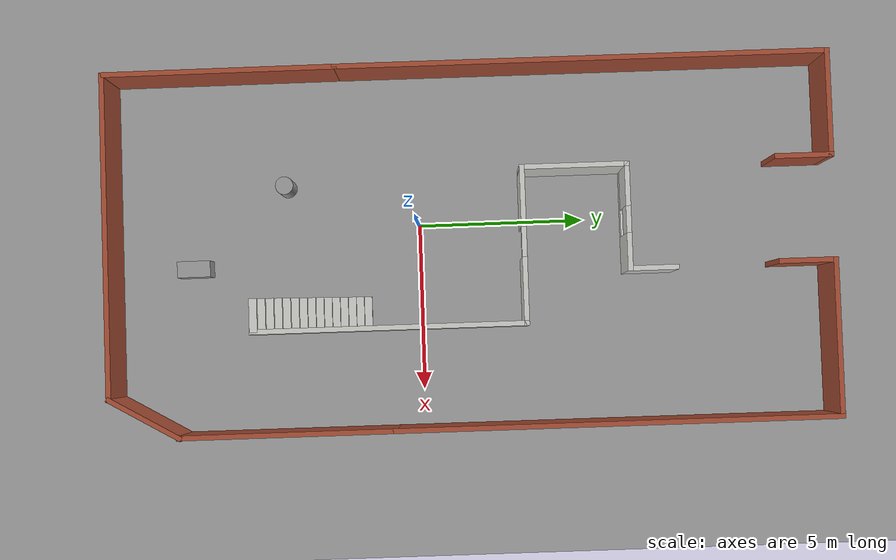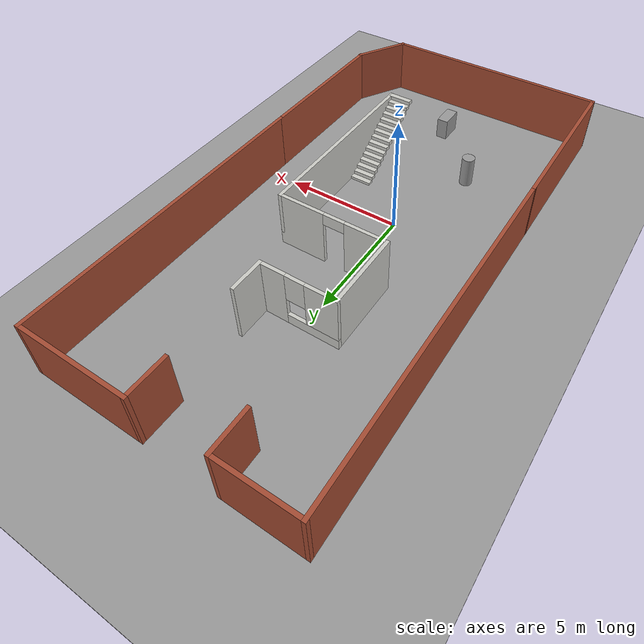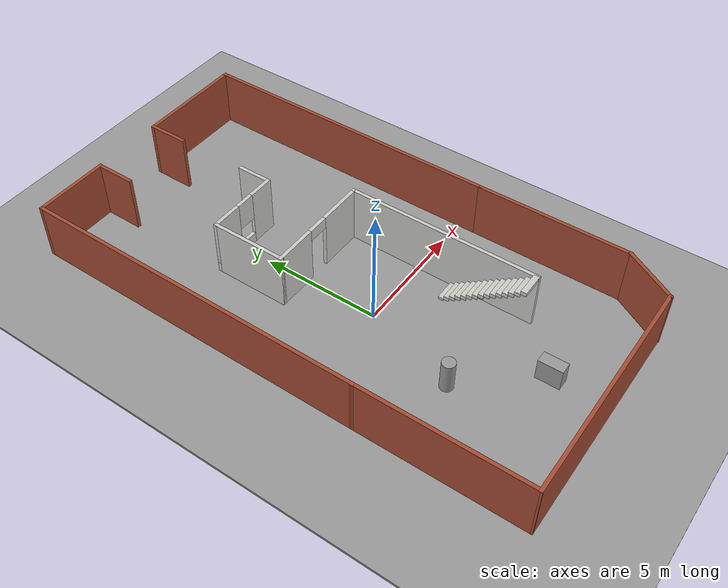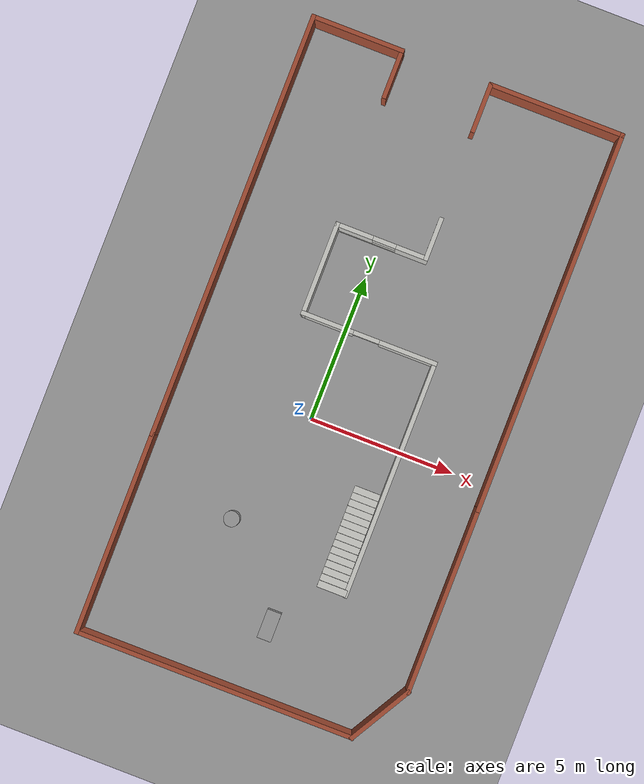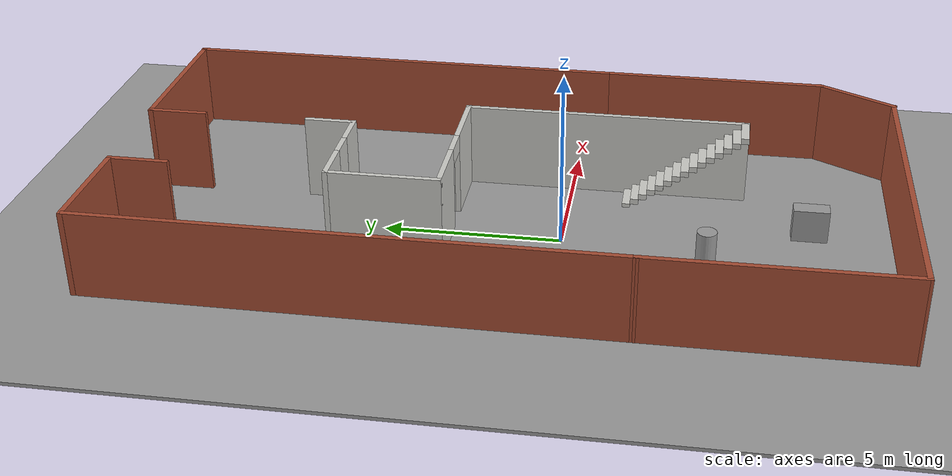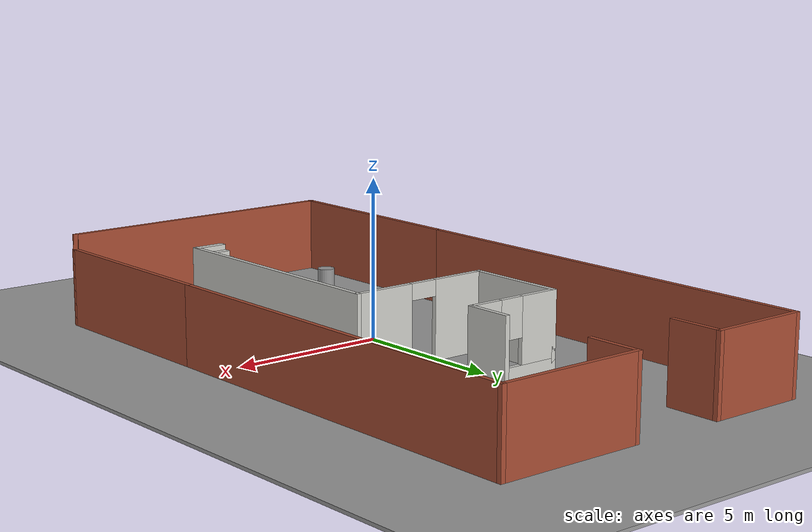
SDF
<sdf version="1.7">
 <world name="default">
  <model name="ground_plane">
   <static>1</static>
   <link name="link">
    <collision name="collision">
     <geometry><plane><normal>0 0 1</normal><size>100 100</size></plane></geometry>
     <surface><friction><ode><mu>100</mu><mu2>50</mu2></ode></friction></surface>
    </collision>
    <visual name="visual">
     <cast_shadows>0</cast_shadows>
     <geometry><plane><normal>0 0 1</normal><size>100 100</size></plane></geometry>
     <material>
      <script><uri>file://media/materials/scripts/gazebo.material</uri><name>Gazebo/Grey</name></script>
     </material>
    </visual>
   </link>
  </model>
  <light name="sun" type="directional">
   <pose>0 0 10 0 -0 0</pose>
   <diffuse>0.8 0.8 0.8 1</diffuse>
   <specular>0.2 0.2 0.2 1</specular>
   <attenuation>
    <range>1000</range>
    <constant>0.9</constant>
    <linear>0.01</linear>
    <quadratic>0.001</quadratic>
   </attenuation>
   <direction>-0.5 0.1 -0.9</direction>
   <spot><inner_angle>0</inner_angle><outer_angle>0</outer_angle><falloff>0</falloff></spot>
  </light>
  <scene><shadows>0</shadows><ambient>0.4 0.4 0.4 1</ambient><background>0.7 0.7 0.7 1</background></scene>
  <physics type="ode">
   <real_time_update_rate>1000</real_time_update_rate>
   <max_step_size>0.001</max_step_size>
   <real_time_factor>1</real_time_factor>
   <ode>
    <solver>
     <type>quick</type>
     <iters>150</iters>
     <precon_iters>0</precon_iters>
     <sor>1.4</sor>
     <use_dynamic_moi_rescaling>1</use_dynamic_moi_rescaling>
    </solver>
    <constraints>
     <cfm>1e-05</cfm>
     <erp>0.2</erp>
     <contact_max_correcting_vel>2000</contact_max_correcting_vel>
     <contact_surface_layer>0.01</contact_surface_layer>
    </constraints>
   </ode>
  </physics>
  <gravity>0 0 -9.8</gravity>
  <magnetic_field>6e-06 2.3e-05 -4.2e-05</magnetic_field>
  <atmosphere type="adiabatic"/>
  <spherical_coordinates>
   <surface_model>EARTH_WGS84</surface_model>
   <latitude_deg>0</latitude_deg>
   <longitude_deg>0</longitude_deg>
   <elevation>0</elevation>
   <heading_deg>0</heading_deg>
  </spherical_coordinates>
  <model name="construction_area">
   <pose>0.77093 1.52164 0 0 -0 0</pose>
   <link name="Stairs_1">
    <visual name="Stairs_1_Visual_0">
     <pose>1.86697 -3.1665 0.083333 0 -0 0</pose>
     <geometry><box><size>1 0.233333 0.166667</size></box></geometry>
     <material>
      <script><uri>file://media/materials/scripts/gazebo.material</uri><name>Gazebo/CeilingTiled</name></script>
      <ambient>0.760784 0.662745 0.627451 1</ambient>
     </material>
     <meta><layer>0</layer></meta>
    </visual>
    <collision name="Stairs_1_Collision_0">
     <geometry><box><size>1 0.233333 0.166667</size></box></geometry>
     <pose>1.86697 -3.1665 0.083333 0 -0 0</pose>
    </collision>
    <visual name="Stairs_1_Visual_1">
     <pose>1.86697 -3.39983 0.25 0 -0 0</pose>
     <geometry><box><size>1 0.233333 0.166667</size></box></geometry>
     <material>
      <script><uri>file://media/materials/scripts/gazebo.material</uri><name>Gazebo/CeilingTiled</name></script>
      <ambient>0.760784 0.662745 0.627451 1</ambient>
     </material>
     <meta><layer>0</layer></meta>
    </visual>
    <collision name="Stairs_1_Collision_1">
     <geometry><box><size>1 0.233333 0.166667</size></box></geometry>
     <pose>1.86697 -3.39983 0.25 0 -0 0</pose>
    </collision>
    <visual name="Stairs_1_Visual_2">
     <pose>1.86697 -3.63317 0.416667 0 -0 0</pose>
     <geometry><box><size>1 0.233333 0.166667</size></box></geometry>
     <material>
      <script><uri>file://media/materials/scripts/gazebo.material</uri><name>Gazebo/CeilingTiled</name></script>
      <ambient>0.760784 0.662745 0.627451 1</ambient>
     </material>
     <meta><layer>0</layer></meta>
    </visual>
    <collision name="Stairs_1_Collision_2">
     <geometry><box><size>1 0.233333 0.166667</size></box></geometry>
     <pose>1.86697 -3.63317 0.416667 0 -0 0</pose>
    </collision>
    <visual name="Stairs_1_Visual_3">
     <pose>1.86697 -3.8665 0.583333 0 -0 0</pose>
     <geometry><box><size>1 0.233333 0.166667</size></box></geometry>
     <material>
      <script><uri>file://media/materials/scripts/gazebo.material</uri><name>Gazebo/CeilingTiled</name></script>
      <ambient>0.760784 0.662745 0.627451 1</ambient>
     </material>
     <meta><layer>0</layer></meta>
    </visual>
    <collision name="Stairs_1_Collision_3">
     <geometry><box><size>1 0.233333 0.166667</size></box></geometry>
     <pose>1.86697 -3.8665 0.583333 0 -0 0</pose>
    </collision>
    <visual name="Stairs_1_Visual_4">
     <pose>1.86697 -4.09983 0.75 0 -0 0</pose>
     <geometry><box><size>1 0.233333 0.166667</size></box></geometry>
     <material>
      <script><uri>file://media/materials/scripts/gazebo.material</uri><name>Gazebo/CeilingTiled</name></script>
      <ambient>0.760784 0.662745 0.627451 1</ambient>
     </material>
     <meta><layer>0</layer></meta>
    </visual>
    <collision name="Stairs_1_Collision_4">
     <geometry><box><size>1 0.233333 0.166667</size></box></geometry>
     <pose>1.86697 -4.09983 0.75 0 -0 0</pose>
    </collision>
    <visual name="Stairs_1_Visual_5">
     <pose>1.86697 -4.33317 0.916667 0 -0 0</pose>
     <geometry><box><size>1 0.233333 0.166667</size></box></geometry>
     <material>
      <script><uri>file://media/materials/scripts/gazebo.material</uri><name>Gazebo/CeilingTiled</name></script>
      <ambient>0.760784 0.662745 0.627451 1</ambient>
     </material>
     <meta><layer>0</layer></meta>
    </visual>
    <collision name="Stairs_1_Collision_5">
     <geometry><box><size>1 0.233333 0.166667</size></box></geometry>
     <pose>1.86697 -4.33317 0.916667 0 -0 0</pose>
    </collision>
    <visual name="Stairs_1_Visual_6">
     <pose>1.86697 -4.5665 1.08333 0 -0 0</pose>
     <geometry><box><size>1 0.233333 0.166667</size></box></geometry>
     <material>
      <script><uri>file://media/materials/scripts/gazebo.material</uri><name>Gazebo/CeilingTiled</name></script>
      <ambient>0.760784 0.662745 0.627451 1</ambient>
     </material>
     <meta><layer>0</layer></meta>
    </visual>
    <collision name="Stairs_1_Collision_6">
     <geometry><box><size>1 0.233333 0.166667</size></box></geometry>
     <pose>1.86697 -4.5665 1.08333 0 -0 0</pose>
    </collision>
    <visual name="Stairs_1_Visual_7">
     <pose>1.86697 -4.79983 1.25 0 -0 0</pose>
     <geometry><box><size>1 0.233333 0.166667</size></box></geometry>
     <material>
      <script><uri>file://media/materials/scripts/gazebo.material</uri><name>Gazebo/CeilingTiled</name></script>
      <ambient>0.760784 0.662745 0.627451 1</ambient>
     </material>
     <meta><layer>0</layer></meta>
    </visual>
    <collision name="Stairs_1_Collision_7">
     <geometry><box><size>1 0.233333 0.166667</size></box></geometry>
     <pose>1.86697 -4.79983 1.25 0 -0 0</pose>
    </collision>
    <visual name="Stairs_1_Visual_8">
     <pose>1.86697 -5.03317 1.41667 0 -0 0</pose>
     <geometry><box><size>1 0.233333 0.166667</size></box></geometry>
     <material>
      <script><uri>file://media/materials/scripts/gazebo.material</uri><name>Gazebo/CeilingTiled</name></script>
      <ambient>0.760784 0.662745 0.627451 1</ambient>
     </material>
     <meta><layer>0</layer></meta>
    </visual>
    <collision name="Stairs_1_Collision_8">
     <geometry><box><size>1 0.233333 0.166667</size></box></geometry>
     <pose>1.86697 -5.03317 1.41667 0 -0 0</pose>
    </collision>
    <visual name="Stairs_1_Visual_9">
     <pose>1.86697 -5.2665 1.58333 0 -0 0</pose>
     <geometry><box><size>1 0.233333 0.166667</size></box></geometry>
     <material>
      <script><uri>file://media/materials/scripts/gazebo.material</uri><name>Gazebo/CeilingTiled</name></script>
      <ambient>0.760784 0.662745 0.627451 1</ambient>
     </material>
     <meta><layer>0</layer></meta>
    </visual>
    <collision name="Stairs_1_Collision_9">
     <geometry><box><size>1 0.233333 0.166667</size></box></geometry>
     <pose>1.86697 -5.2665 1.58333 0 -0 0</pose>
    </collision>
    <visual name="Stairs_1_Visual_10">
     <pose>1.86697 -5.49984 1.75 0 -0 0</pose>
     <geometry><box><size>1 0.233333 0.166667</size></box></geometry>
     <material>
      <script><uri>file://media/materials/scripts/gazebo.material</uri><name>Gazebo/CeilingTiled</name></script>
      <ambient>0.760784 0.662745 0.627451 1</ambient>
     </material>
     <meta><layer>0</layer></meta>
    </visual>
    <collision name="Stairs_1_Collision_10">
     <geometry><box><size>1 0.233333 0.166667</size></box></geometry>
     <pose>1.86697 -5.49984 1.75 0 -0 0</pose>
    </collision>
    <visual name="Stairs_1_Visual_11">
     <pose>1.86697 -5.73317 1.91667 0 -0 0</pose>
     <geometry><box><size>1 0.233333 0.166667</size></box></geometry>
     <material>
      <script><uri>file://media/materials/scripts/gazebo.material</uri><name>Gazebo/CeilingTiled</name></script>
      <ambient>0.760784 0.662745 0.627451 1</ambient>
     </material>
     <meta><layer>0</layer></meta>
    </visual>
    <collision name="Stairs_1_Collision_11">
     <geometry><box><size>1 0.233333 0.166667</size></box></geometry>
     <pose>1.86697 -5.73317 1.91667 0 -0 0</pose>
    </collision>
    <visual name="Stairs_1_Visual_12">
     <pose>1.86697 -5.9665 2.08333 0 -0 0</pose>
     <geometry><box><size>1 0.233333 0.166667</size></box></geometry>
     <material>
      <script><uri>file://media/materials/scripts/gazebo.material</uri><name>Gazebo/CeilingTiled</name></script>
      <ambient>0.760784 0.662745 0.627451 1</ambient>
     </material>
     <meta><layer>0</layer></meta>
    </visual>
    <collision name="Stairs_1_Collision_12">
     <geometry><box><size>1 0.233333 0.166667</size></box></geometry>
     <pose>1.86697 -5.9665 2.08333 0 -0 0</pose>
    </collision>
    <visual name="Stairs_1_Visual_13">
     <pose>1.86697 -6.19984 2.25 0 -0 0</pose>
     <geometry><box><size>1 0.233333 0.166667</size></box></geometry>
     <material>
      <script><uri>file://media/materials/scripts/gazebo.material</uri><name>Gazebo/CeilingTiled</name></script>
      <ambient>0.760784 0.662745 0.627451 1</ambient>
     </material>
     <meta><layer>0</layer></meta>
    </visual>
    <collision name="Stairs_1_Collision_13">
     <geometry><box><size>1 0.233333 0.166667</size></box></geometry>
     <pose>1.86697 -6.19984 2.25 0 -0 0</pose>
    </collision>
    <visual name="Stairs_1_Visual_14">
     <pose>1.86697 -6.43317 2.41667 0 -0 0</pose>
     <geometry><box><size>1 0.233333 0.166667</size></box></geometry>
     <material>
      <script><uri>file://media/materials/scripts/gazebo.material</uri><name>Gazebo/CeilingTiled</name></script>
      <ambient>0.760784 0.662745 0.627451 1</ambient>
     </material>
     <meta><layer>0</layer></meta>
    </visual>
    <collision name="Stairs_1_Collision_14">
     <geometry><box><size>1 0.233333 0.166667</size></box></geometry>
     <pose>1.86697 -6.43317 2.41667 0 -0 0</pose>
    </collision>
   </link>
   <link name="Wall_1">
    <collision name="Wall_1_Collision">
     <geometry><box><size>9.75 0.15 2.5</size></box></geometry>
     <pose>0 0 1.25 0 -0 0</pose>
    </collision>
    <visual name="Wall_1_Visual">
     <pose>0 0 1.25 0 -0 0</pose>
     <geometry><box><size>9.75 0.15 2.5</size></box></geometry>
     <material>
      <script><uri>file://media/materials/scripts/gazebo.material</uri><name>Gazebo/Bricks</name></script>
      <ambient>1 1 1 1</ambient>
     </material>
     <meta><layer>0</layer></meta>
    </visual>
    <pose>-0.58859 -10.7289 0 0 -0 0</pose>
   </link>
   <link name="Wall_10">
    <collision name="Wall_10_Collision">
     <geometry><box><size>14.75 0.15 2.5</size></box></geometry>
     <pose>0 0 1.25 0 -0 0</pose>
    </collision>
    <visual name="Wall_10_Visual">
     <pose>0 0 1.25 0 -0 0</pose>
     <geometry><box><size>14.75 0.15 2.5</size></box></geometry>
     <material>
      <script><uri>file://media/materials/scripts/gazebo.material</uri><name>Gazebo/Bricks</name></script>
      <ambient>1 1 1 1</ambient>
     </material>
     <meta><layer>0</layer></meta>
    </visual>
    <pose>-5.41359 3.45631 0 0 -0 -1.5708</pose>
   </link>
   <link name="Wall_19">
    <collision name="Wall_19_Collision">
     <geometry><box><size>7.03521 0.15 2.5</size></box></geometry>
     <pose>0 0 1.25 0 -0 0</pose>
    </collision>
    <visual name="Wall_19_Visual">
     <pose>0 0 1.25 0 -0 0</pose>
     <geometry><box><size>7.03521 0.15 2.5</size></box></geometry>
     <material>
      <script><uri>file://media/materials/scripts/gazebo.material</uri><name>Gazebo/Bricks</name></script>
      <ambient>1 1 1 1</ambient>
     </material>
     <meta><layer>0</layer></meta>
    </visual>
    <pose>-5.40109 -7.28627 0 0 -0 -1.56716</pose>
   </link>
   <link name="Wall_2">
    <collision name="Wall_2_Collision">
     <geometry><box><size>2.5 0.15 2.5</size></box></geometry>
     <pose>0 0 1.25 0 -0 0</pose>
    </collision>
    <visual name="Wall_2_Visual">
     <pose>0 0 1.25 0 -0 0</pose>
     <geometry><box><size>2.5 0.15 2.5</size></box></geometry>
     <material>
      <script><uri>file://media/materials/scripts/gazebo.material</uri><name>Gazebo/Bricks</name></script>
      <ambient>1 1 1 1</ambient>
     </material>
     <meta><layer>0</layer></meta>
    </visual>
    <pose>4.79891 -9.71128 0 0 -0 1.0472</pose>
   </link>
   <link name="Wall_21">
    <pose>-0.697015 4.70809 0 0 -0 3.14159</pose>
    <visual name="Wall_21_Visual_0">
     <pose>-1.0627 0 1.25 0 -0 0</pose>
     <geometry><box><size>1.12459 0.15 2.5</size></box></geometry>
     <material>
      <script><uri>file://media/materials/scripts/gazebo.material</uri><name>Gazebo/CeilingTiled</name></script>
      <ambient>1 1 1 1</ambient>
     </material>
     <meta><layer>0</layer></meta>
    </visual>
    <collision name="Wall_21_Collision_0">
     <geometry><box><size>1.12459 0.15 2.5</size></box></geometry>
     <pose>-1.0627 0 1.25 0 -0 0</pose>
    </collision>
    <visual name="Wall_21_Visual_1">
     <pose>0.562297 0 0.25 0 -0 0</pose>
     <geometry><box><size>2.12541 0.15 0.5</size></box></geometry>
     <material>
      <script><uri>file://media/materials/scripts/gazebo.material</uri><name>Gazebo/CeilingTiled</name></script>
      <ambient>1 1 1 1</ambient>
     </material>
     <meta><layer>0</layer></meta>
    </visual>
    <collision name="Wall_21_Collision_1">
     <geometry><box><size>2.12541 0.15 0.5</size></box></geometry>
     <pose>0.562297 0 0.25 0 -0 0</pose>
    </collision>
    <visual name="Wall_21_Visual_2">
     <pose>0.962297 0 1.5 0 -0 0</pose>
     <geometry><box><size>1.32541 0.15 2</size></box></geometry>
     <material>
      <script><uri>file://media/materials/scripts/gazebo.material</uri><name>Gazebo/CeilingTiled</name></script>
      <ambient>1 1 1 1</ambient>
     </material>
     <meta><layer>0</layer></meta>
    </visual>
    <collision name="Wall_21_Collision_2">
     <geometry><box><size>1.32541 0.15 2</size></box></geometry>
     <pose>0.962297 0 1.5 0 -0 0</pose>
    </collision>
    <visual name="Wall_21_Visual_3">
     <pose>-0.100406 0 1.9 0 -0 0</pose>
     <geometry><box><size>0.8 0.15 1.2</size></box></geometry>
     <material>
      <script><uri>file://media/materials/scripts/gazebo.material</uri><name>Gazebo/CeilingTiled</name></script>
      <ambient>1 1 1 1</ambient>
     </material>
     <meta><layer>0</layer></meta>
    </visual>
    <collision name="Wall_21_Collision_3">
     <geometry><box><size>0.8 0.15 1.2</size></box></geometry>
     <pose>-0.100406 0 1.9 0 -0 0</pose>
    </collision>
   </link>
   <link name="Wall_22">
    <collision name="Wall_22_Collision">
     <geometry><box><size>3.25 0.15 2.5</size></box></geometry>
     <pose>0 0 1.25 0 -0 0</pose>
    </collision>
    <visual name="Wall_22_Visual">
     <pose>0 0 1.25 0 -0 0</pose>
     <geometry><box><size>3.25 0.15 2.5</size></box></geometry>
     <material>
      <script><uri>file://media/materials/scripts/gazebo.material</uri><name>Gazebo/CeilingTiled</name></script>
      <ambient>1 1 1 1</ambient>
     </material>
     <meta><layer>0</layer></meta>
    </visual>
    <pose>-2.24702 3.15809 0 0 -0 -1.5708</pose>
   </link>
   <link name="Wall_23">
    <pose>0.052985 1.60809 0 0 -0 0</pose>
    <visual name="Wall_23_Visual_0">
     <pose>-1.45822 0 1.25 0 -0 0</pose>
     <geometry><box><size>1.83355 0.15 2.5</size></box></geometry>
     <material>
      <script><uri>file://media/materials/scripts/gazebo.material</uri><name>Gazebo/CeilingTiled</name></script>
      <ambient>1 1 1 1</ambient>
     </material>
     <meta><layer>0</layer></meta>
    </visual>
    <collision name="Wall_23_Collision_0">
     <geometry><box><size>1.83355 0.15 2.5</size></box></geometry>
     <pose>-1.45822 0 1.25 0 -0 0</pose>
    </collision>
    <visual name="Wall_23_Visual_1">
     <pose>1.36678 0 1.25 0 -0 0</pose>
     <geometry><box><size>2.01645 0.15 2.5</size></box></geometry>
     <material>
      <script><uri>file://media/materials/scripts/gazebo.material</uri><name>Gazebo/CeilingTiled</name></script>
      <ambient>1 1 1 1</ambient>
     </material>
     <meta><layer>0</layer></meta>
    </visual>
    <collision name="Wall_23_Collision_1">
     <geometry><box><size>2.01645 0.15 2.5</size></box></geometry>
     <pose>1.36678 0 1.25 0 -0 0</pose>
    </collision>
    <visual name="Wall_23_Visual_2">
     <pose>-0.091448 0 2.25 0 -0 0</pose>
     <geometry><box><size>0.9 0.15 0.5</size></box></geometry>
     <material>
      <script><uri>file://media/materials/scripts/gazebo.material</uri><name>Gazebo/CeilingTiled</name></script>
      <ambient>1 1 1 1</ambient>
     </material>
     <meta><layer>0</layer></meta>
    </visual>
    <collision name="Wall_23_Collision_2">
     <geometry><box><size>0.9 0.15 0.5</size></box></geometry>
     <pose>-0.091448 0 2.25 0 -0 0</pose>
    </collision>
   </link>
   <link name="Wall_24">
    <collision name="Wall_24_Collision">
     <geometry><box><size>8.25 0.15 2.5</size></box></geometry>
     <pose>0 0 1.25 0 -0 0</pose>
    </collision>
    <visual name="Wall_24_Visual">
     <pose>0 0 1.25 0 -0 0</pose>
     <geometry><box><size>8.25 0.15 2.5</size></box></geometry>
     <material>
      <script><uri>file://media/materials/scripts/gazebo.material</uri><name>Gazebo/CeilingTiled</name></script>
      <ambient>1 1 1 1</ambient>
     </material>
     <meta><layer>0</layer></meta>
    </visual>
    <pose>2.35298 -2.44191 0 0 -0 -1.5708</pose>
   </link>
   <link name="Wall_26">
    <collision name="Wall_26_Collision">
     <geometry><box><size>1.5 0.15 2.5</size></box></geometry>
     <pose>0 0 1.25 0 -0 0</pose>
    </collision>
    <visual name="Wall_26_Visual">
     <pose>0 0 1.25 0 -0 0</pose>
     <geometry><box><size>1.5 0.15 2.5</size></box></geometry>
     <material>
      <script><uri>file://media/materials/scripts/gazebo.material</uri><name>Gazebo/CeilingTiled</name></script>
      <ambient>1 1 1 1</ambient>
     </material>
     <meta><layer>0</layer></meta>
    </visual>
    <pose>0.852985 5.38309 0 0 -0 1.5708</pose>
   </link>
   <link name="Wall_3">
    <collision name="Wall_3_Collision">
     <geometry><box><size>6.5 0.15 2.5</size></box></geometry>
     <pose>0 0 1.25 0 -0 0</pose>
    </collision>
    <visual name="Wall_3_Visual">
     <pose>0 0 1.25 0 -0 0</pose>
     <geometry><box><size>6.5 0.15 2.5</size></box></geometry>
     <material>
      <script><uri>file://media/materials/scripts/gazebo.material</uri><name>Gazebo/Bricks</name></script>
      <ambient>1 1 1 1</ambient>
     </material>
     <meta><layer>0</layer></meta>
    </visual>
    <pose>5.38641 -5.5187 0 0 -0 1.5708</pose>
   </link>
   <link name="Wall_4">
    <collision name="Wall_4_Collision">
     <geometry><box><size>13.25 0.15 2.5</size></box></geometry>
     <pose>0 0 1.25 0 -0 0</pose>
    </collision>
    <visual name="Wall_4_Visual">
     <pose>0 0 1.25 0 -0 0</pose>
     <geometry><box><size>13.25 0.15 2.5</size></box></geometry>
     <material>
      <script><uri>file://media/materials/scripts/gazebo.material</uri><name>Gazebo/Bricks</name></script>
      <ambient>1 1 1 1</ambient>
     </material>
     <meta><layer>0</layer></meta>
    </visual>
    <pose>5.38641 4.20631 0 0 -0 1.5708</pose>
   </link>
   <link name="Wall_5">
    <collision name="Wall_5_Collision">
     <geometry><box><size>4.75 0.15 2.5</size></box></geometry>
     <pose>0 0 1.25 0 -0 0</pose>
    </collision>
    <visual name="Wall_5_Visual">
     <pose>0 0 1.25 0 -0 0</pose>
     <geometry><box><size>4.75 0.15 2.5</size></box></geometry>
     <material>
      <script><uri>file://media/materials/scripts/gazebo.material</uri><name>Gazebo/Bricks</name></script>
      <ambient>1 1 1 1</ambient>
     </material>
     <meta><layer>0</layer></meta>
    </visual>
    <pose>3.08641 10.7563 0 0 -0 3.14159</pose>
   </link>
   <link name="Wall_6">
    <collision name="Wall_6_Collision">
     <geometry><box><size>1.75 0.15 2.5</size></box></geometry>
     <pose>0 0 1.25 0 -0 0</pose>
    </collision>
    <visual name="Wall_6_Visual">
     <pose>0 0 1.25 0 -0 0</pose>
     <geometry><box><size>1.75 0.15 2.5</size></box></geometry>
     <material>
      <script><uri>file://media/materials/scripts/gazebo.material</uri><name>Gazebo/Bricks</name></script>
      <ambient>1 1 1 1</ambient>
     </material>
     <meta><layer>0</layer></meta>
    </visual>
    <pose>0.78641 9.95631 0 0 -0 -1.5708</pose>
   </link>
   <link name="Wall_8">
    <collision name="Wall_8_Collision">
     <geometry><box><size>1.75 0.15 2.5</size></box></geometry>
     <pose>0 0 1.25 0 -0 0</pose>
    </collision>
    <visual name="Wall_8_Visual">
     <pose>0 0 1.25 0 -0 0</pose>
     <geometry><box><size>1.75 0.15 2.5</size></box></geometry>
     <material>
      <script><uri>file://media/materials/scripts/gazebo.material</uri><name>Gazebo/Bricks</name></script>
      <ambient>1 1 1 1</ambient>
     </material>
     <meta><layer>0</layer></meta>
    </visual>
    <pose>-2.31359 9.95631 0 0 -0 1.5708</pose>
   </link>
   <link name="Wall_9">
    <collision name="Wall_9_Collision">
     <geometry><box><size>3.25 0.15 2.5</size></box></geometry>
     <pose>0 0 1.25 0 -0 0</pose>
    </collision>
    <visual name="Wall_9_Visual">
     <pose>0 0 1.25 0 -0 0</pose>
     <geometry><box><size>3.25 0.15 2.5</size></box></geometry>
     <material>
      <script><uri>file://media/materials/scripts/gazebo.material</uri><name>Gazebo/Bricks</name></script>
      <ambient>1 1 1 1</ambient>
     </material>
     <meta><layer>0</layer></meta>
    </visual>
    <pose>-3.86359 10.7563 0 0 -0 3.14159</pose>
   </link>
   <static>1</static>
  </model>
  <model name="ground_plane_0">
   <static>1</static>
   <link name="link">
    <collision name="collision">
     <geometry><plane><normal>0 0 1</normal><size>100 100</size></plane></geometry>
     <surface><friction><ode><mu>100</mu><mu2>50</mu2></ode></friction></surface>
    </collision>
    <visual name="visual">
     <cast_shadows>0</cast_shadows>
     <geometry><plane><normal>0 0 1</normal><size>100 100</size></plane></geometry>
     <material>
      <script><uri>file://media/materials/scripts/gazebo.material</uri><name>Gazebo/Grey</name></script>
     </material>
    </visual>
   </link>
   <pose>-1.30986 -3.4956 0 0 -0 0</pose>
  </model>
  <model name="unit_box">
   <pose>1.14834 -6.84709 0.499997 -6e-06 0 0</pose>
   <link name="link">
    <inertial>
     <mass>1</mass>
     <inertia>
      <ixx>0.166667</ixx>
      <ixy>0</ixy>
      <ixz>0</ixz>
      <iyy>0.166667</iyy>
      <iyz>0</iyz>
      <izz>0.166667</izz>
     </inertia>
    </inertial>
    <collision name="collision"><geometry><box><size>0.490031 1 1</size></box></geometry></collision>
    <visual name="visual">
     <geometry><box><size>0.490031 1 1</size></box></geometry>
     <material>
      <script><name>Gazebo/Grey</name><uri>file://media/materials/scripts/gazebo.material</uri></script>
     </material>
    </visual>
   </link>
  </model>
  <model name="unit_cylinder">
   <pose>-1.26266 -4.00318 0.691041 0 -0 0</pose>
   <link name="link">
    <inertial>
     <mass>1</mass>
     <inertia><ixx>0.145833</ixx><ixy>0</ixy><ixz>0</ixz><iyy>0.145833</iyy><iyz>0</iyz><izz>0.125</izz></inertia>
    </inertial>
    <collision name="collision">
     <geometry><cylinder><radius>0.270242</radius><length>1.38208</length></cylinder></geometry>
    </collision>
    <visual name="visual">
     <geometry><cylinder><radius>0.270242</radius><length>1.38208</length></cylinder></geometry>
     <material>
      <script><name>Gazebo/Grey</name><uri>file://media/materials/scripts/gazebo.material</uri></script>
     </material>
    </visual>
   </link>
  </model>
 </world>
</sdf>
